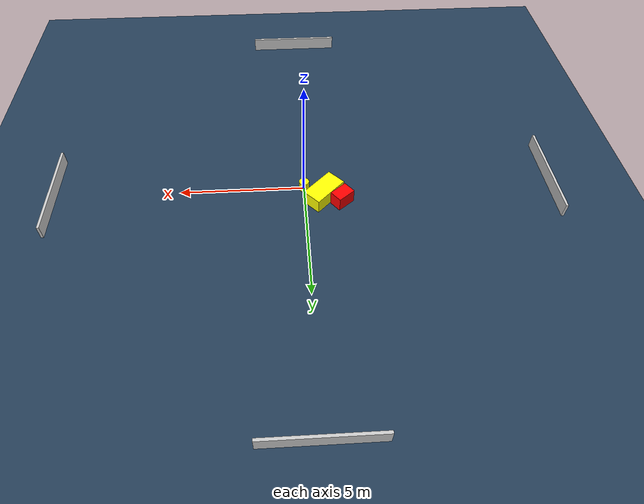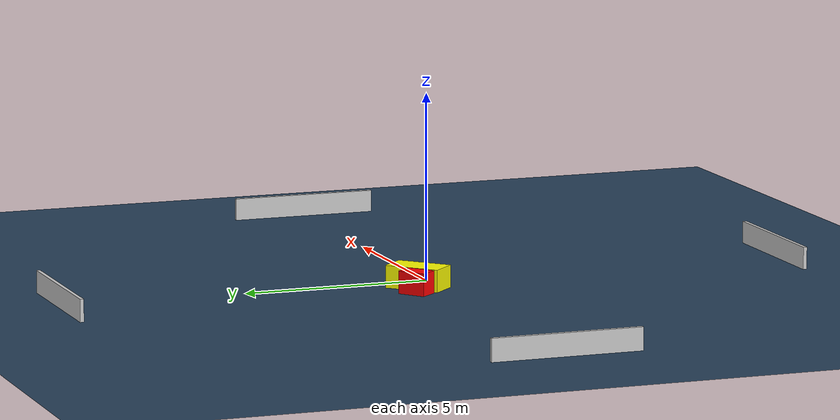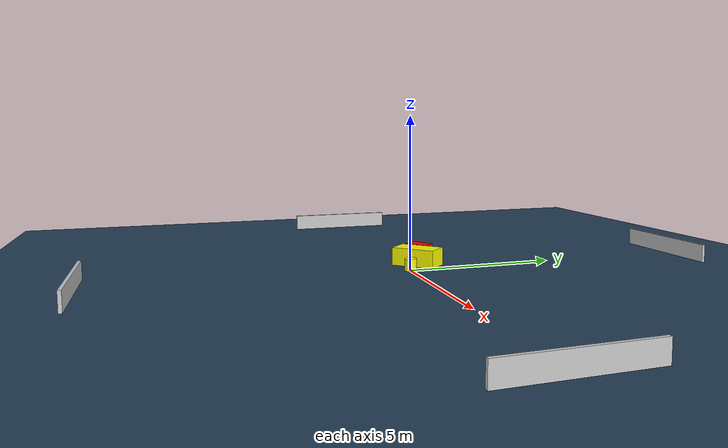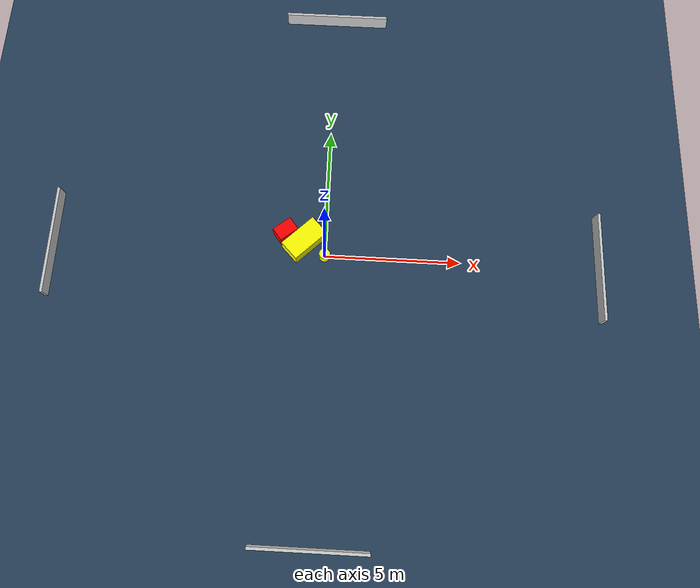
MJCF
<?xml version="1.0" ?>
<mujoco model="generated_environment">
  <option timestep="0.01" integrator="RK4" cone="elliptic"/>
  <default>
    <geom density="1"/>
  </default>
  <asset>
    <texture builtin="gradient" height="3072" name="skybox" rgb1="0.3 0.5 0.7" rgb2="0 0 0" type="skybox" width="512"/>
    <texture builtin="checker" height="300" name="groundplane" rgb1="0.2 0.3 0.4" rgb2="0.1 0.2 0.3" type="2d" width="300"/>
    <material name="groundplane" reflectance="0.2" texrepeat="5 5" texture="groundplane"/>
  </asset>
  <worldbody>
    <light dir="0 0 -1" directional="true" pos="0 0 1.5"/>
    <geom condim="3" friction="0.5 0.005 0.001" material="groundplane" name="floor" pos="0 0 0" size="0 0 0.05" type="plane"/>
    <body name="walls">
      <geom name="wall_1" condim="4" pos="-10.0 0.0 0.3" rgba="0.800000011920929 0.800000011920929 0.800000011920929 1.0" size="0.05 2.0 0.3" type="box"/>
      <geom name="wall_2" condim="4" pos="10.0 0.0 0.3" rgba="0.800000011920929 0.800000011920929 0.800000011920929 1.0" size="0.05 2.0 0.3" type="box"/>
      <geom name="wall_3" condim="4" pos="0.0 -10.0 0.3" rgba="0.800000011920929 0.800000011920929 0.800000011920929 1.0" size="2.0 0.05 0.3" type="box"/>
      <geom name="wall_4" condim="4" pos="0.0 10.0 0.3" rgba="0.800000011920929 0.800000011920929 0.800000011920929 1.0" size="2.0 0.05 0.3" type="box"/>
    </body>
    <body name="robot">
      <joint name="joint_x" type="slide" pos="0 0 0" axis="1 0 0"/>
      <joint name="joint_y" type="slide" pos="0 0 0" axis="0 1 0"/>
      <geom name="robot" type="cylinder" pos="0.0 0.0 0.2" size="0.2 0.2 0.0" mass="5.0" friction="1.0 0.005 0.0001" condim="4" rgba="1.0 1.0 0.0 1.0"/>
    </body>
    <body name="obstacle_1_movable">
      <geom name="obstacle_1_movable" condim="4" pos="-0.7630430848195123 0.5088207035794692 0.3" euler="0 0 134.0261638555923" friction="0.0 0.005 0.001" rgba="1.0 1.0 0.0 1.0" size="0.3985811653998825 0.7498885042811914 0.3" type="box" mass="0.1"/>
      <joint type="free"/>
    </body>
    <body name="obstacle_2_static">
      <geom name="obstacle_2_static" condim="4" pos="-1.4703184692925142 0.8152232529885278 0.3" euler="0 0 218.0877793092214" friction="0.0 0.005 0.001" rgba="1.0 0.0 0.0 1.0" size="0.3826049668295183 0.2628211032844947 0.3" type="box"/>
    </body>
  </worldbody>
  <actuator>
    <motor name="actuator_x" joint="joint_x" gear="1" ctrlrange="-1 1"/>
    <motor name="actuator_y" joint="joint_y" gear="1" ctrlrange="-1 1"/>
  </actuator>
</mujoco>
